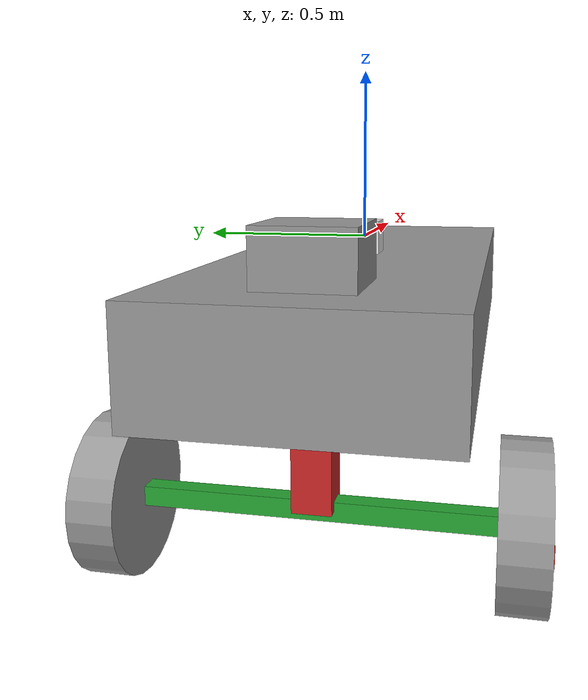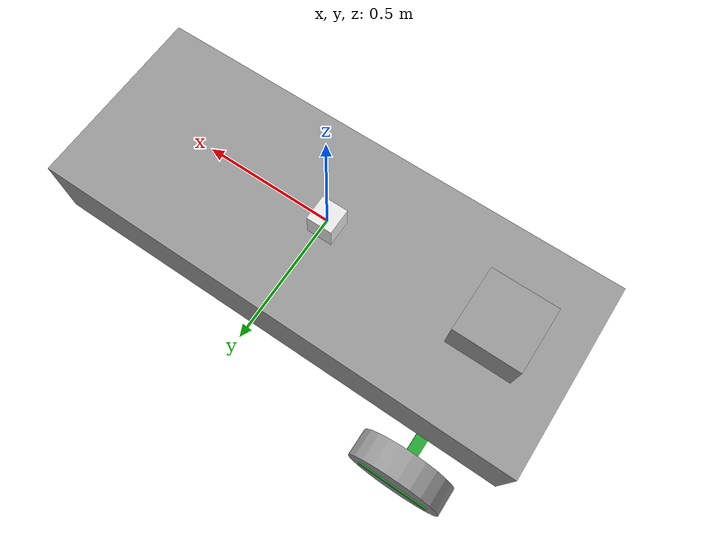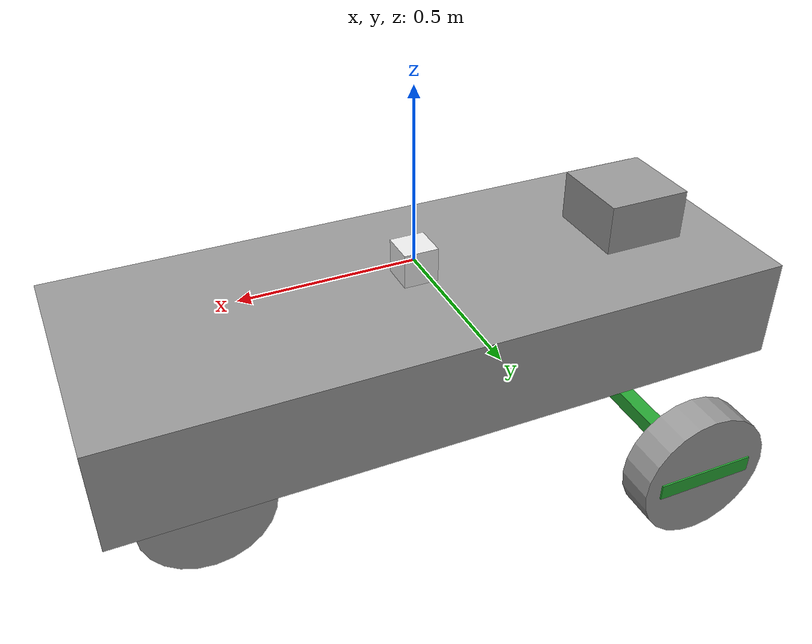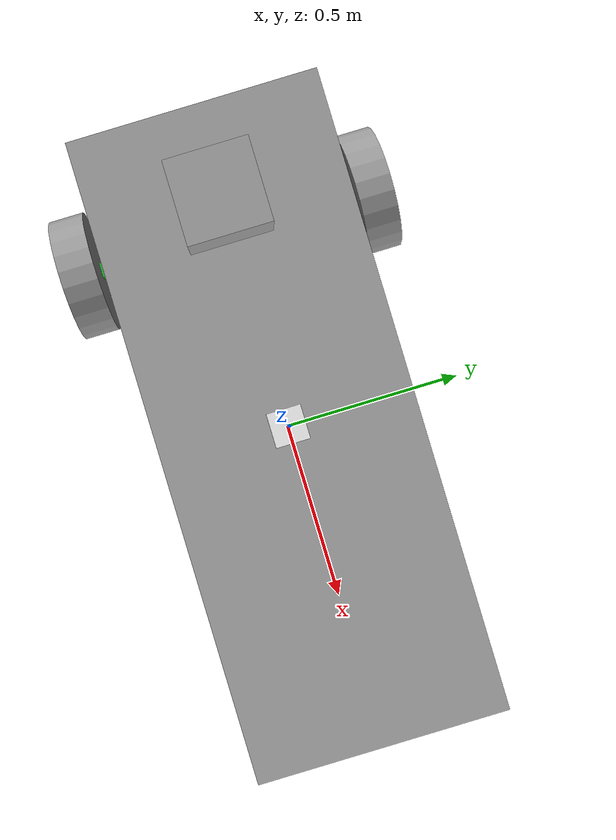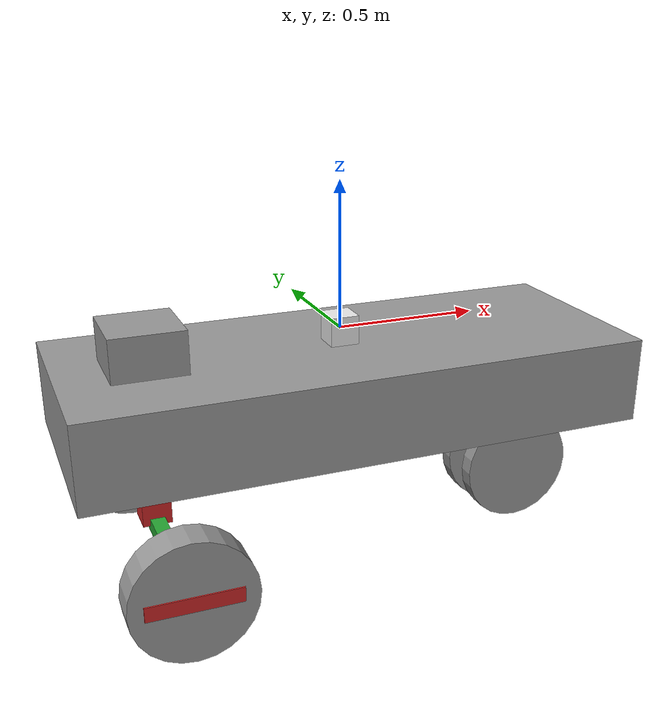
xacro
<?xml version="1.0"?>

<!-- Revolute-Revolute Manipulator -->
<robot name="car_test" xmlns:xacro="http://www.ros.org/wiki/xacro">

    <!-- Physical Constant Macros -->
    <xacro:property name="M_PI" value="3.1415926535897931" />

    <!-- Dimension Macros -->
    <xacro:property name="wheelRadius" value="0.20447" />
    <xacro:property name="wheelWidth" value="0.11684" />

	<xacro:property name="axelBoxSize" value="0.1" />
	<xacro:property name="axelBoxHight" value="${wheelRadius + 0.05}" />
	<xacro:property name="rearAxelLength" value="${carWidth + wheelWidth}" />
	<xacro:property name="frontAxelLength" value="${axelBoxSize}" />
	<xacro:property name="axelThickness" value="0.05" />

    <xacro:property name="carLength" value="1.94" />
    <xacro:property name="carWidth" value="0.76" />
    <xacro:property name="carHeight" value="${1.05 - 0.5 - axelBoxHight}" />

    <xacro:property name="motorMass" value="30" />
    <xacro:property name="motorSize" value="0.25" />

    <xacro:property name="carMass" value="50" />
    <xacro:property name="componentMass" value="5" />
    <xacro:property name="wheelMass" value="1" />
	<xacro:property name="wheelBase" value="1.359" />

	<xacro:property name="dummySize" value="0.1" />

	<xacro:property name="spinVisLength" value="${wheelRadius * 1.5}" />
	<xacro:property name="spinVisWidth" value="0.05" />
	<xacro:property name="spinVisDepth" value="0.01" />

  <!-- Import all Gazebo-customization elements, including Gazebo colors -->
  <xacro:include filename="$(find car_test_description)/urdf/car_test.gazebo" />
  <!-- Import Rviz colors -->
  <xacro:include filename="$(find car_test_description)/urdf/car_test_materials.xacro" />

<!--_________________________________________ Body ______________________________________-->
    <link name="base_link">
        <visual>
            <origin xyz="0 0 0"  rpy="0 0 0" />
            <geometry>
                <box size="${dummySize} ${dummySize} ${dummySize}" />
            </geometry>
            <material name="white"/>
        </visual>
        <collision>
            <origin xyz="0 0 0"  rpy="0 0 0" />
            <geometry>
                <box size="${dummySize} ${dummySize} ${dummySize}" />
            </geometry>
        </collision>
    </link>

    <joint name="base_joint" type="fixed">
    	<parent link="base_link"/>
    	<child link="car_body"/>
        <origin xyz="0 0 ${-dummySize*0.5}"/>
    </joint>

    <link name="car_body">
        <inertial>
            <origin xyz="0 0 ${-carHeight*0.5}"  rpy="0 0 0" />
            <mass value="${carMass}" />
      		<inertia
	  			ixx="${carMass / 12.0 * (carWidth*carWidth + carHeight*carHeight)}" ixy="0.0" ixz="0.0"
	  			iyy="${carMass / 12.0 * (carHeight*carHeight + carLength*carLength)}" iyz="0.0"
	  			izz="${carMass / 12.0 * (carLength*carLength + carWidth*carWidth)}"
			/>
        </inertial>
        <visual>
            <origin xyz="0 0 ${-carHeight*0.5}"  rpy="0 0 0" />
            <geometry>
                <box size="${carLength} ${carWidth} ${carHeight}" />
            </geometry>
            <material name="grey"/>
        </visual>
        <collision>
            <origin xyz="0 0 ${-carHeight*0.5}"  rpy="0 0 0" />
            <geometry>
                <box size="${carLength} ${carWidth} ${carHeight}" />
            </geometry>
        </collision>
    </link>

 <joint name="motor_joint" type="fixed">
    	<parent link="car_body"/>
    	<child link="motor_link"/>
    	<origin xyz="-${wheelBase/2} 0.0 ${carHeight/2}"/>
    </joint>

    <link name="motor_link">
        <inertial>
            <mass value="${motorMass}" />
            <origin xyz="0 0 ${-motorSize/2}" rpy="0 0 0"/>
            <inertia
	  			ixx="${motorMass / 12.0 * (carWidth*carWidth + carHeight*carHeight)}" ixy="0.0" ixz="0.0"
	  			iyy="${motorMass / 12.0 * (carHeight*carHeight + carLength*carLength)}" iyz="0.0"
	  			izz="${motorMass / 12.0 * (carLength*carLength + carWidth*carWidth)}"
			/>
        </inertial>
        <visual>
            <origin xyz="0 0 ${-motorSize/2}" rpy="0 0 0"/>
            <geometry>
                <box size="${motorSize} ${motorSize} ${motorSize}" />
            </geometry>
            <material name="grey"/>
        </visual>
        <collision>
            <origin xyz="0 0 ${-motorSize/2}" rpy="0 0 0"/>
            <geometry>
                <box size="${motorSize} ${motorSize} ${motorSize}" />
            </geometry>
        </collision>
    </link>
    <!-- ______________________________________________Front Suspension_______________________________________________ -->

	<!-- xxxxxxxxxxxxxxxxxxSTEERINGxxxxxxxxxxxxxxxxxxx-->
    <joint name="front_joint" type="revolute">
		<limit lower="-${M_PI/4}" upper="${M_PI/4}" effort="100" velocity="2" />
		<dynamics damping="0.7"/>
		<axis xyz="0 0 1" />
    	<parent link="car_body"/>
    	<child link="front_link"/>
    	<origin xyz="${wheelBase/2} 0.0 ${-carHeight}"/>
    </joint>

    <link name="front_link">
        <inertial>
            <mass value="${componentMass}" />
            <origin xyz="0 0 ${axelBoxHight/2}" rpy="0 0 0"/>
            <inertia  ixx="0.1" ixy="0.0"  ixz="0.0"  iyy="0.1"  iyz="0.0"  izz="0.1" />
        </inertial>
        <visual>
            <origin xyz="0 0 ${-axelBoxHight/2}" rpy="0 0 0"/>
            <geometry>
                <box size="${axelBoxSize} ${axelBoxSize} ${axelBoxHight}" />
            </geometry>
            <material name="red"/>
        </visual>
        <collision>
            <origin xyz="0 0 ${axelBoxHight/2}" rpy="0 0 0"/>
            <geometry>
                <box size="${axelBoxSize} ${axelBoxSize} ${axelBoxHight}" />
            </geometry>
        </collision>
    </link>

    <joint name="front_axel_joint" type="continuous" >
        <axis xyz="0 1 0" />
		<dynamics damping="0.1"/>
        <parent link="front_link" />
        <child link="front_axel_link" />
        <origin xyz="0 0 ${-axelBoxHight}" rpy="0 0 0"/>
    </joint>

    <link name="front_axel_link">
        <inertial>
        	<origin xyz="0 0 0" rpy="0 0 0"/>
            <mass value="${componentMass}" />
            <origin xyz="0 0 0" />
            <inertia  ixx="0.01" ixy="0.0"  ixz="0.0"  iyy="0.01"  iyz="0.0"  izz="0.01" />
        </inertial>
        <visual>
			<origin xyz="0 0 0" rpy="0 0 0"/>
            <geometry>
                <box size="${axelThickness} ${frontAxelLength} ${axelThickness}" />
            </geometry>
            <material name="green"/>
        </visual>
        <collision>
        	<origin xyz="0 0 0" rpy="0 0 0"/>
            <geometry>
                <box size="${axelThickness} ${frontAxelLength} ${axelThickness}" />
            </geometry>
        </collision>
    </link>

 <!--_____________________________________________Rear Suspension _______________________________________________________-->
    <joint name="rear_joint" type="fixed">
    	<parent link="car_body"/>
    	<child link="rear_link"/>
    	<origin xyz="-${wheelBase/2} 0.0 ${carHeight*-1.0}"/>
    </joint>

    <link name="rear_link">
        <inertial>
            <mass value="${componentMass}" />
            <origin xyz="0 0 ${-axelBoxSize/2}" rpy="0 0 0"/>
            <inertia  ixx="0.1" ixy="0.0"  ixz="0.0"  iyy="0.1"  iyz="0.0"  izz="0.1" />
        </inertial>
        <visual>
            <origin xyz="0 0 ${-axelBoxHight/2}" rpy="0 0 0"/>
            <geometry>
                <box size="${axelBoxSize} ${axelBoxSize} ${axelBoxHight}" />
            </geometry>
            <material name="red"/>
        </visual>
        <collision>
            <origin xyz="0 0 ${-axelBoxHight/2}" rpy="0 0 0"/>
            <geometry>
                <box size="${axelBoxSize} ${axelBoxSize} ${axelBoxHight}" />
            </geometry>
        </collision>
    </link>

	<!--xxxxxxxxxxxxxxxxxThrottlexxxxxxxxxxxxxxxxxxxxxxx-->
    <joint name="rear_axel_joint" type="continuous" >
		<limit effort="100" velocity="5" />
        <axis xyz="0 1 0" />
		<dynamics damping="5"/>
        <parent link="rear_link" />
        <child link="rear_axel_link" />
        <origin xyz="0 0 ${-axelBoxHight}" rpy="0 0 0"/>
    </joint>

    <link name="rear_axel_link">
        <inertial>
        	<origin xyz="0 0 0" rpy="0 0 0"/>
            <mass value="${componentMass}" />
            <inertia  ixx="0.01" ixy="0.0"  ixz="0.0"  iyy="0.01"  iyz="0.0"  izz="0.01" />
        </inertial>
        <visual>
			<origin xyz="0 0 0" rpy="0 0 0"/>
            <geometry>
                <box size="${axelThickness} ${rearAxelLength} ${axelThickness}" />
            </geometry>
            <material name="green"/>
        </visual>
        <collision>
        	<origin xyz="0 0 0" rpy="0 0 0"/>
            <geometry>
                <box size="${axelThickness} ${rearAxelLength} ${axelThickness}" />
            </geometry>
        </collision>
    </link>

<!--____________________________________Wheels________________________________________-->
	<!-- the front left wheel -->
    <joint name="front_left_wheel_joint" type="fixed" >
        <parent link="front_axel_link" />
        <child link="front_left_wheel_link" />
        <origin xyz="0 -${frontAxelLength/2} 0" rpy="0 0 0" />
    </joint>

    <link name="front_left_wheel_link">
        <inertial>
            <mass value="${wheelMass}" />
			<origin xyz="0 -${wheelWidth*0.25} 0" rpy="${M_PI/2} 0 0" />
            <inertia  ixx="0.01" ixy="0.0"  ixz="0.0"  iyy="0.01"  iyz="0.0"  izz="0.01" />
        </inertial>
        <visual>
			<origin xyz="0 -${wheelWidth*0.25} 0" rpy="${M_PI/2} 0 0" />
            <geometry>
                <cylinder radius="${wheelRadius}" length="${wheelWidth/2}" />
            </geometry>
            <material name="grey"/>
        </visual>
        <collision>
			<origin xyz="0 -${wheelWidth*0.25} 0" rpy="${M_PI/2} 0 0" />
            <geometry>
                <cylinder radius="${wheelRadius}" length="${wheelWidth/2}" />
            </geometry>
        </collision>
    </link>

	<!-- the front right wheel -->
        <joint name="front_right_wheel_joint" type="fixed" >
        <parent link="front_axel_link" />
        <child link="front_right_wheel_link" />
        <origin xyz="0 ${frontAxelLength/2} 0" rpy="0 0 0" />
    </joint>

    <link name="front_right_wheel_link">
        <inertial>
            <mass value="${wheelMass}" />
			<origin xyz="0 ${wheelWidth*0.25} 0" rpy="${M_PI/2} 0 0" />
            <inertia  ixx="0.01" ixy="0.0"  ixz="0.0"  iyy="0.01"  iyz="0.0"  izz="0.01" />
        </inertial>
        <visual>
			<origin xyz="0 ${wheelWidth*0.25} 0" rpy="${M_PI/2} 0 0" />
            <geometry>
                <cylinder radius="${wheelRadius}" length="${wheelWidth/2}" />
            </geometry>
            <material name="grey"/>
        </visual>
        <collision>
			<origin xyz="0 ${wheelWidth*0.25} 0" rpy="${M_PI/2} 0 0" />
            <geometry>
                <cylinder radius="${wheelRadius}" length="${wheelWidth/2}" />
            </geometry>
        </collision>
    </link>

	<!-- the back left wheel -->
    <joint name="rear_left_wheel_joint" type="fixed" >
        <parent link="rear_axel_link" />
        <child link="rear_left_wheel_link" />
        <origin xyz="0 -${rearAxelLength/2} 0" rpy="0 0 0" />
    </joint>

    <link name="rear_left_wheel_link">
        <inertial>
            <mass value="${wheelMass}" />
			<origin xyz="0 -${wheelWidth*0.5} 0" rpy="${M_PI/2} 0 0" />
            <inertia  ixx="0.01" ixy="0.0"  ixz="0.0"  iyy="0.01"  iyz="0.0"  izz="0.01" />
        </inertial>
        <visual>
			<origin xyz="0 -${wheelWidth*0.5} 0" rpy="${M_PI/2} 0 0" />
            <geometry>
                <cylinder radius="${wheelRadius}" length="${wheelWidth}" />
            </geometry>
            <material name="grey"/>
        </visual>
        <collision>
			<origin xyz="0 -${wheelWidth*0.5} 0" rpy="${M_PI/2} 0 0" />
            <geometry>
                <cylinder radius="${wheelRadius}" length="${wheelWidth}" />
            </geometry>
        </collision>
    </link>

	<!-- the back right wheel -->
    <joint name="rear_right_wheel_joint" type="fixed" >
        <parent link="rear_axel_link" />
        <child link="rear_right_wheel_link" />
        <origin xyz="0 ${rearAxelLength/2} 0" rpy="0 0 0" />
    </joint>

    <link name="rear_right_wheel_link">
        <inertial>
            <mass value="${carMass*0.05}" />
			<origin xyz="0 ${wheelWidth*0.5} 0" rpy="${M_PI/2} 0 0" />
            <inertia  ixx="0.01" ixy="0.0"  ixz="0.0"  iyy="0.01"  iyz="0.0"  izz="0.01" />
        </inertial>
        <visual>
			<origin xyz="0 ${wheelWidth*0.5} 0" rpy="${M_PI/2} 0 0" />
            <geometry>
                <cylinder radius="${wheelRadius}" length="${wheelWidth}" />
            </geometry>
            <material name="grey"/>
        </visual>
        <collision>
			<origin xyz="0 ${wheelWidth*0.5} 0" rpy="${M_PI/2} 0 0" />
            <geometry>
                <cylinder radius="${wheelRadius}" length="${wheelWidth}" />
            </geometry>
        </collision>
    </link>

<!--________________________________________wheel_direction_bars_______________________________________________-->

	<!-- the back left wheel -->

	<joint name="left_spin_joint" type="fixed" >
        <parent link="rear_left_wheel_link" />
        <child link="left_spin_link" />
        <origin xyz="0 -${wheelWidth} 0" rpy="0 0 0" />
    </joint>

	<link name="left_spin_link">
        <visual>
            <origin xyz="0 0 0"  rpy="0 0 0" />
            <geometry>
                <box size="${spinVisLength} ${spinVisDepth} ${spinVisWidth}" />
            </geometry>
            <material name="red"/>
        </visual>
        <collision>
            <origin xyz="0 0 0"  rpy="0 0 0" />
            <geometry>
                <box size="${spinVisLength} ${spinVisDepth} ${spinVisWidth}" />
            </geometry>
        </collision>
    </link>

	<!-- the back right wheel -->

	<joint name="right_spin_joint" type="fixed" >
        <parent link="rear_right_wheel_link" />
        <child link="right_spin_link" />
        <origin xyz="0 ${wheelWidth} 0" rpy="0 0 0" />
    </joint>

	<link name="right_spin_link">
        <visual>
            <origin xyz="0 0 0"  rpy="0 0 0" />
            <geometry>
                <box size="${spinVisLength} ${spinVisDepth} ${spinVisWidth}" />
            </geometry>
            <material name="green"/>
        </visual>
        <collision>
            <origin xyz="0 0 0"  rpy="0 0 0" />
            <geometry>
                <box size="${spinVisLength} ${spinVisDepth} ${spinVisWidth}" />
            </geometry>
        </collision>
    </link>

<!--________________________________________control info_______________________________________________-->

	<transmission name="throttle">
		<type>transmission_interface/SimpleTransmission</type>
		<joint name="rear_axel_joint">
			<hardwareInterface>hardware_interface/EffortJointInterface</hardwareInterface>
		</joint>
		<actuator name="motor1">
			<hardwareInterface>hardware_interface/EffortJointInterface</hardwareInterface>
			<mechanicalReduction>1</mechanicalReduction>
		</actuator>
	</transmission>

	<transmission name="steering">
		<type>transmission_interface/SimpleTransmission</type>
		<joint name="front_joint">
			<hardwareInterface>hardware_interface/EffortJointInterface</hardwareInterface>
		</joint>
		<actuator name="motor2">
			<hardwareInterface>hardware_interface/EffortJointInterface</hardwareInterface>
			<mechanicalReduction>1</mechanicalReduction>
		</actuator>
	</transmission>
</robot>
